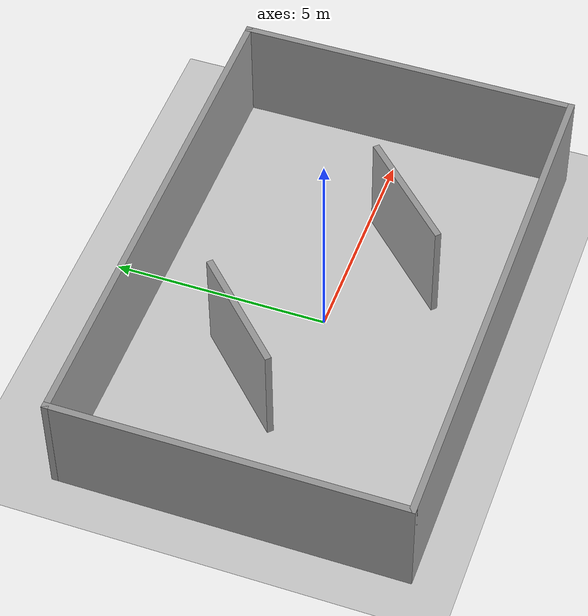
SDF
<sdf version="1.7">
 <world name="default">
  <light name="sun" type="directional">
   <pose>0 0 10 0 -0 0</pose>
   <diffuse>0.8 0.8 0.8 1</diffuse>
   <specular>0.2 0.2 0.2 1</specular>
   <attenuation>
    <range>1000</range>
    <constant>0.9</constant>
    <linear>0.01</linear>
    <quadratic>0.001</quadratic>
   </attenuation>
   <direction>-0.5 0.1 -0.9</direction>
   <spot><inner_angle>0</inner_angle><outer_angle>0</outer_angle><falloff>0</falloff></spot>
  </light>
  <model name="ground_plane">
   <static>1</static>
   <link name="link">
    <collision name="collision">
     <geometry><plane><normal>0 0 1</normal><size>100 100</size></plane></geometry>
     <surface><friction><ode><mu>100</mu><mu2>50</mu2></ode></friction></surface>
    </collision>
    <visual name="visual">
     <cast_shadows>0</cast_shadows>
     <geometry><plane><normal>0 0 1</normal><size>100 100</size></plane></geometry>
     <material>
      <script><uri>file://media/materials/scripts/gazebo.material</uri><name>Gazebo/Grey</name></script>
     </material>
    </visual>
   </link>
  </model>
  <gravity>0 0 -9.8</gravity>
  <magnetic_field>6e-06 2.3e-05 -4.2e-05</magnetic_field>
  <atmosphere type="adiabatic"/>
  <physics type="ode">
   <max_step_size>0.001</max_step_size>
   <real_time_factor>1</real_time_factor>
   <real_time_update_rate>1000</real_time_update_rate>
  </physics>
  <scene><ambient>0.4 0.4 0.4 1</ambient><background>0.7 0.7 0.7 1</background><shadows>1</shadows></scene>
  <audio><device>default</device></audio>
  <spherical_coordinates>
   <surface_model>EARTH_WGS84</surface_model>
   <latitude_deg>0</latitude_deg>
   <longitude_deg>0</longitude_deg>
   <elevation>0</elevation>
   <heading_deg>0</heading_deg>
  </spherical_coordinates>
  <model name="map">
   <pose>0.025797 0.02797 0 0 -0 0</pose>
   <link name="Wall_19">
    <collision name="Wall_19_Collision">
     <geometry><box><size>12 0.15 2.5</size></box></geometry>
     <pose>0 0 1.25 0 -0 0</pose>
    </collision>
    <visual name="Wall_19_Visual">
     <pose>0 0 1.25 0 -0 0</pose>
     <geometry><box><size>12 0.15 2.5</size></box></geometry>
     <material>
      <script><uri>file://media/materials/scripts/gazebo.material</uri><name>Gazebo/Grey</name></script>
      <ambient>1 1 1 1</ambient>
     </material>
     <meta><layer>0</layer></meta>
    </visual>
    <pose>0 -3.925 0 0 -0 0</pose>
   </link>
   <link name="Wall_21">
    <collision name="Wall_21_Collision">
     <geometry><box><size>8 0.15 2.5</size></box></geometry>
     <pose>0 0 1.25 0 -0 0</pose>
    </collision>
    <visual name="Wall_21_Visual">
     <pose>0 0 1.25 0 -0 0</pose>
     <geometry><box><size>8 0.15 2.5</size></box></geometry>
     <material>
      <script><uri>file://media/materials/scripts/gazebo.material</uri><name>Gazebo/Grey</name></script>
      <ambient>1 1 1 1</ambient>
     </material>
     <meta><layer>0</layer></meta>
    </visual>
    <pose>5.925 -0 0 0 -0 1.5708</pose>
   </link>
   <link name="Wall_22">
    <collision name="Wall_22_Collision">
     <geometry><box><size>12 0.15 2.5</size></box></geometry>
     <pose>0 0 1.25 0 -0 0</pose>
    </collision>
    <visual name="Wall_22_Visual">
     <pose>0 0 1.25 0 -0 0</pose>
     <geometry><box><size>12 0.15 2.5</size></box></geometry>
     <material>
      <script><uri>file://media/materials/scripts/gazebo.material</uri><name>Gazebo/Grey</name></script>
      <ambient>1 1 1 1</ambient>
     </material>
     <meta><layer>0</layer></meta>
    </visual>
    <pose>0 3.925 0 0 -0 3.14159</pose>
   </link>
   <link name="Wall_23">
    <collision name="Wall_23_Collision">
     <geometry><box><size>8 0.15 2.5</size></box></geometry>
     <pose>0 0 1.25 0 -0 0</pose>
    </collision>
    <visual name="Wall_23_Visual">
     <pose>0 0 1.25 0 -0 0</pose>
     <geometry><box><size>8 0.15 2.5</size></box></geometry>
     <material>
      <script><uri>file://media/materials/scripts/gazebo.material</uri><name>Gazebo/Grey</name></script>
      <ambient>1 1 1 1</ambient>
     </material>
     <meta><layer>0</layer></meta>
    </visual>
    <pose>-5.925 -0 0 0 -0 -1.5708</pose>
   </link>
   <link name="Wall_28">
    <collision name="Wall_28_Collision">
     <geometry><box><size>3 0.15 2.5</size></box></geometry>
     <pose>0 0 1.25 0 -0 0</pose>
    </collision>
    <visual name="Wall_28_Visual">
     <pose>0 0 1.25 0 -0 0</pose>
     <geometry><box><size>3 0.15 2.5</size></box></geometry>
     <material>
      <script><uri>file://media/materials/scripts/gazebo.material</uri><name>Gazebo/Grey</name></script>
      <ambient>1 1 1 1</ambient>
     </material>
     <meta><layer>0</layer></meta>
    </visual>
    <pose>-2.23735 1.12125 0 0 -0 0.785398</pose>
   </link>
   <link name="Wall_33">
    <collision name="Wall_33_Collision">
     <geometry><box><size>3 0.15 2.5</size></box></geometry>
     <pose>0 0 1.25 0 -0 0</pose>
    </collision>
    <visual name="Wall_33_Visual">
     <pose>0 0 1.25 0 -0 0</pose>
     <geometry><box><size>3 0.15 2.5</size></box></geometry>
     <material>
      <script><uri>file://media/materials/scripts/gazebo.material</uri><name>Gazebo/Grey</name></script>
      <ambient>1 1 1 1</ambient>
     </material>
     <meta><layer>0</layer></meta>
    </visual>
    <pose>2.21218 -1.17669 0 0 -0 -2.35619</pose>
   </link>
   <static>1</static>
  </model>
 </world>
</sdf>
